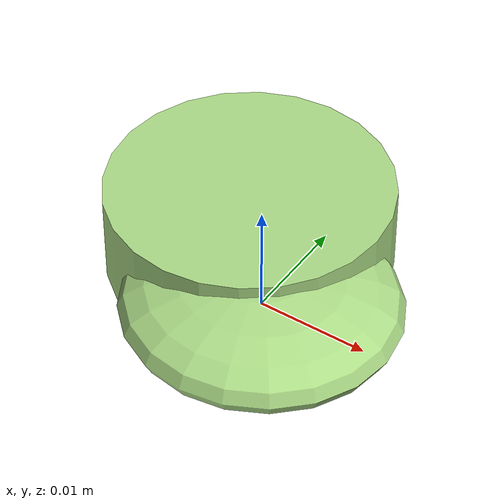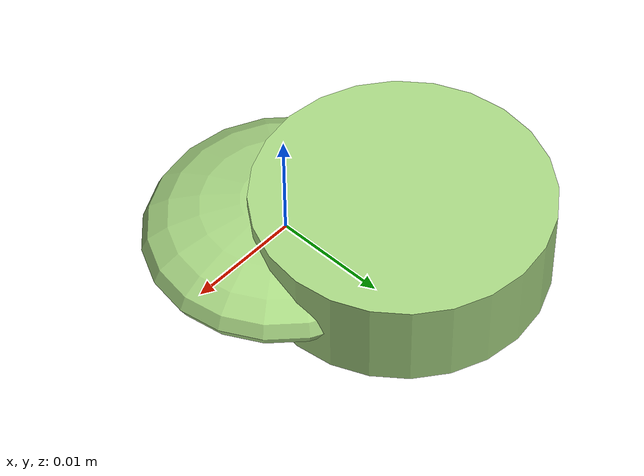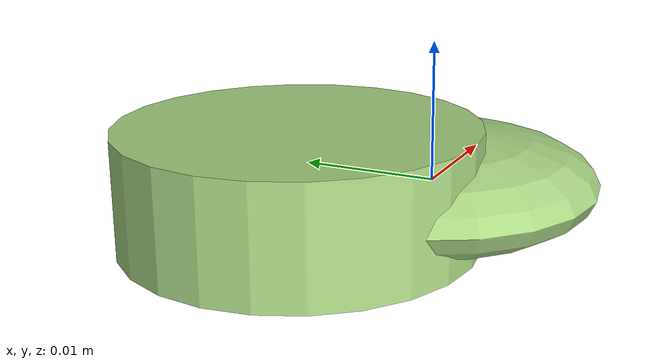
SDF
<?xml version="1.0" ?>
<!-- |    This document was autogenerated by xmacro from data/veggie_template/veggie_base.sdf.xacro  | -->
<!-- |    EDITING THIS FILE BY HAND IS NOT RECOMMENDED                                               | -->
<sdf version="1.8">
	<!-- Parameters -->
	<!-- Base -->
	<!-- Joint 0 -->
	<!-- Link 1 -->
	<!-- Joint 1 -->
	<!-- Link 2 -->
	<!-- Primitives -->
	<!-- All dimensions are half -->
	<!-- Object -->
	<model name="veggie">
		<!-- link0 -->
		<link name="link0">
			<inertial>
				<mass>0.002315566241698956</mass>
				<inertia>
					<ixx>7.196424638667757e-08</ixx>
					<ixy>0</ixy>
					<ixz>0</ixz>
					<iyy>7.64447201827142e-08</iyy>
					<iyz>0</iyz>
					<izz>1.3508817198721712e-07</izz>
				</inertia>
			</inertial>
			<visual name="link0_visual">
				<pose>0 0 0 0 0 0</pose>
				<geometry>
					<ellipsoid>
						<radii>0.012275390932647928 0.01187478588062728 0.003792333000118498</radii>
					</ellipsoid>
				</geometry>
				<material>
					<ambient>0.659 0.839 0.514 1</ambient>
					<diffuse>0.659 0.839 0.514 1</diffuse>
					<specular>0 0 0 0</specular>
					<emissive>0 0 0 1</emissive>
				</material>
			</visual>
			<collision name="link0_collision">
				<pose>0 0 0 0 0 0 </pose>
				<geometry>
					<ellipsoid>
						<radii>0.012275390932647928 0.01187478588062728 0.003792333000118498</radii>
					</ellipsoid>
				</geometry>
			</collision>
		</link>
		<!-- link1 -->
		<joint name="joint0" type="fixed">
			<pose relative_to="link0">-0.006198764028821889 0.0074310238899080484 0.0005743803289085687 0.0 0.0 0.0</pose>
			<parent>link0</parent>
			<child>link1</child>
		</joint>
		<link name="link1">
			<pose relative_to="joint0">0 0 0 0 0 0</pose>
			<inertial>
				<mass>0.004217986560224601</mass>
				<inertia>
					<ixx>1.9526967067883396e-07</ixx>
					<ixy>0</ixy>
					<ixz>0</ixz>
					<iyy>1.9526967067883396e-07</iyy>
					<iyz>0</iyz>
					<izz>3.424854306262506e-07</izz>
				</inertia>
			</inertial>
			<visual name="link1_visual">
				<pose>0 0 0 0 0 0</pose>
				<geometry>
					<cylinder>
						<radius>0.012743345345198557</radius>
						<length>0.008267751181277547</length>
					</cylinder>
				</geometry>
				<material>
					<ambient>0.659 0.839 0.514 1</ambient>
					<diffuse>0.659 0.839 0.514 1</diffuse>
					<specular>0 0 0 0</specular>
					<emissive>0 0 0 1</emissive>
				</material>
			</visual>
			<collision name="link1_collision">
				<pose>0 0 0 0 0 0 </pose>
				<geometry>
					<cylinder>
						<radius>0.012743345345198557</radius>
						<length>0.008267751181277547</length>
					</cylinder>
				</geometry>
			</collision>
		</link>
		<!-- link2 -->
	</model>
</sdf>
